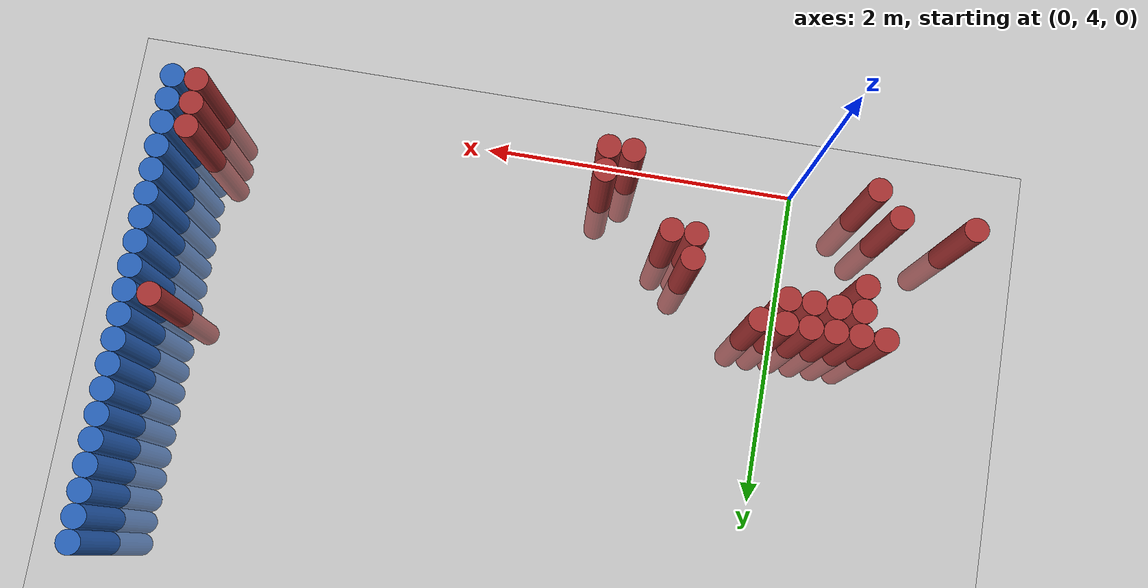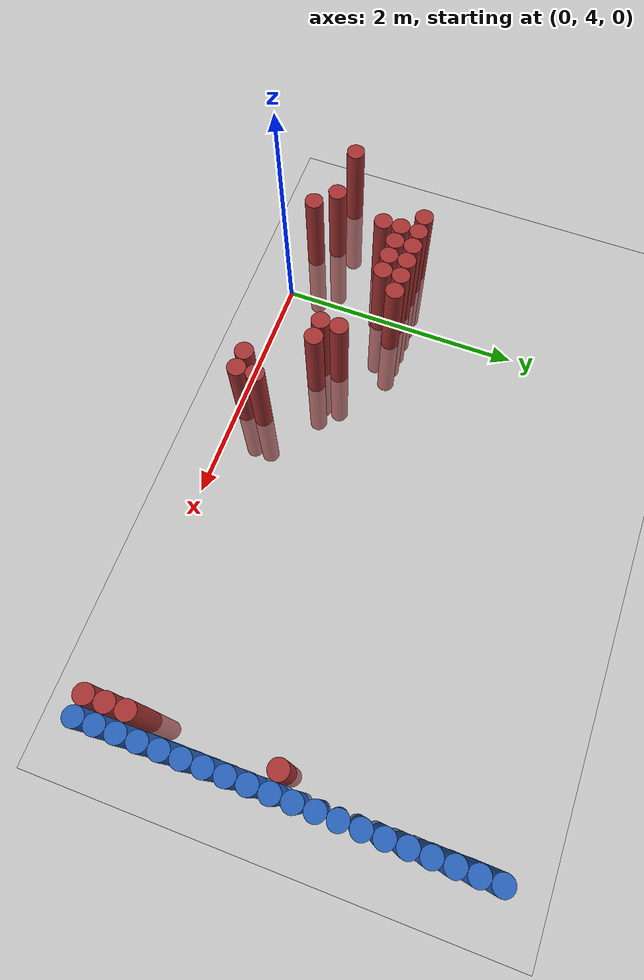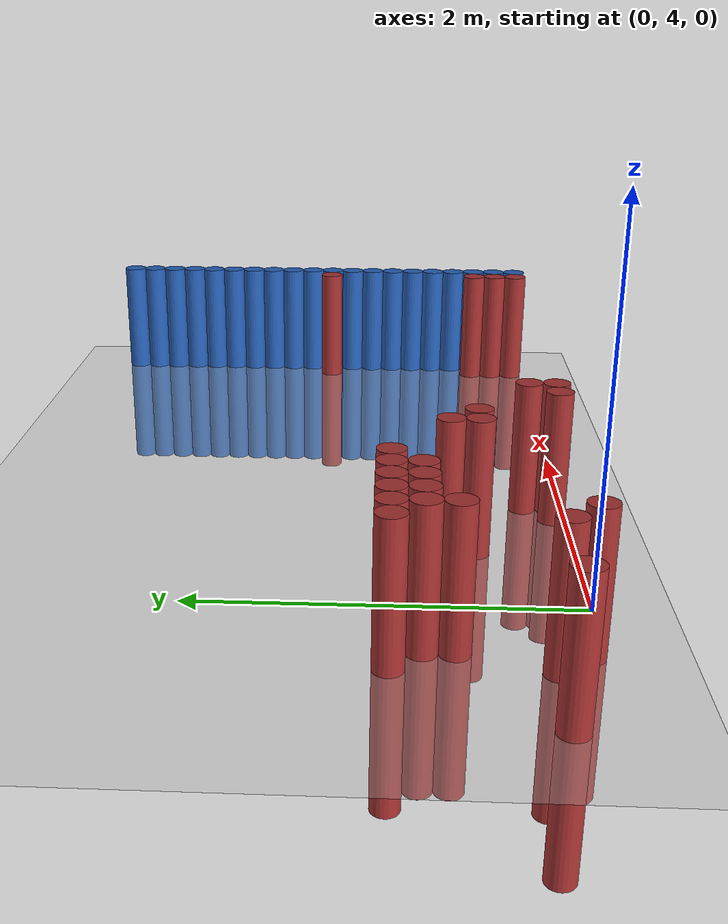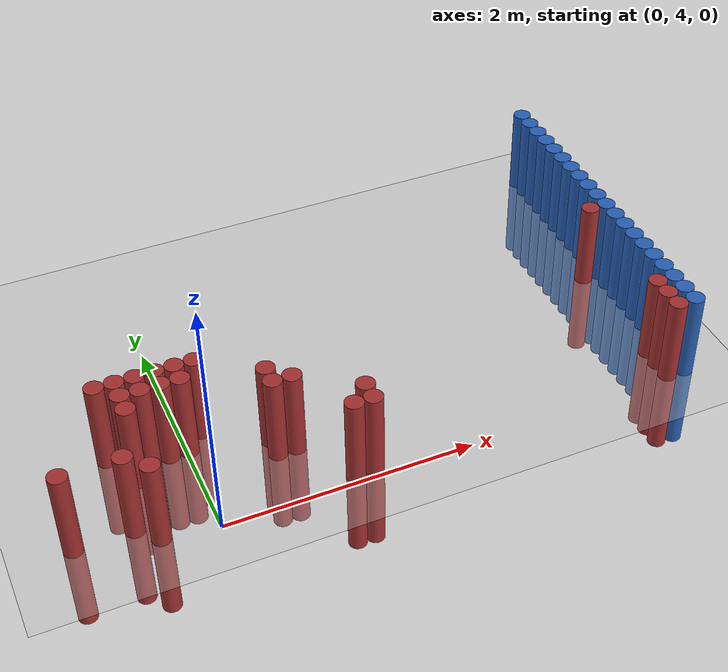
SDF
<sdf version="1.6">
 <world name="default">
  <model name="ground_plane">
   <static>1</static>
   <link name="link">
    <collision name="collision">
     <geometry><plane><normal>0 0 1</normal><size>100 100</size></plane></geometry>
     <surface><friction><ode><mu>100</mu><mu2>50</mu2></ode></friction></surface>
    </collision>
    <visual name="visual">
     <cast_shadows>0</cast_shadows>
     <geometry><plane><normal>0 0 1</normal><size>100 100</size></plane></geometry>
     <material>
      <script><uri>file://media/materials/scripts/gazebo.material</uri><name>Gazebo/Grey</name></script>
     </material>
    </visual>
   </link>
  </model>
  <model name="unit_cylinder_168">
   <static>1</static>
   <pose>3.925000 4.075000 0.000000 0.000000 0.000000 0.000000</pose>
   <link name="link">
    <inertial>
     <mass>1</mass>
     <inertia><ixx>0.145833</ixx><ixy>0</ixy><ixz>0</ixz><iyy>0.145833</iyy><iyz>0</iyz><izz>0.125</izz></inertia>
    </inertial>
    <collision name="collision">
     <geometry><cylinder><radius>0.075000</radius><length>1.5</length></cylinder></geometry>
    </collision>
    <visual name="visual">
     <geometry><cylinder><radius>0.075000</radius><length>1.5</length></cylinder></geometry>
     <material>
      <ambient>0.152000 0.379000 0.720000 1</ambient>
      <diffuse>0.152000 0.379000 0.720000 1</diffuse>
     </material>
     <material>
      <script><name>Gazebo/Grey</name><uri>file://media/materials/scripts/gazebo.material</uri></script>
     </material>
    </visual>
   </link>
  </model>
  <model name="unit_cylinder_170">
   <static>1</static>
   <pose>3.925000 4.225000 0.000000 0.000000 0.000000 0.000000</pose>
   <link name="link">
    <inertial>
     <mass>1</mass>
     <inertia><ixx>0.145833</ixx><ixy>0</ixy><ixz>0</ixz><iyy>0.145833</iyy><iyz>0</iyz><izz>0.125</izz></inertia>
    </inertial>
    <collision name="collision">
     <geometry><cylinder><radius>0.075000</radius><length>1.5</length></cylinder></geometry>
    </collision>
    <visual name="visual">
     <geometry><cylinder><radius>0.075000</radius><length>1.5</length></cylinder></geometry>
     <material>
      <ambient>0.152000 0.379000 0.720000 1</ambient>
      <diffuse>0.152000 0.379000 0.720000 1</diffuse>
     </material>
     <material>
      <script><name>Gazebo/Grey</name><uri>file://media/materials/scripts/gazebo.material</uri></script>
     </material>
    </visual>
   </link>
  </model>
  <model name="unit_cylinder_172">
   <static>1</static>
   <pose>3.925000 4.375000 0.000000 0.000000 0.000000 0.000000</pose>
   <link name="link">
    <inertial>
     <mass>1</mass>
     <inertia><ixx>0.145833</ixx><ixy>0</ixy><ixz>0</ixz><iyy>0.145833</iyy><iyz>0</iyz><izz>0.125</izz></inertia>
    </inertial>
    <collision name="collision">
     <geometry><cylinder><radius>0.075000</radius><length>1.5</length></cylinder></geometry>
    </collision>
    <visual name="visual">
     <geometry><cylinder><radius>0.075000</radius><length>1.5</length></cylinder></geometry>
     <material>
      <ambient>0.152000 0.379000 0.720000 1</ambient>
      <diffuse>0.152000 0.379000 0.720000 1</diffuse>
     </material>
     <material>
      <script><name>Gazebo/Grey</name><uri>file://media/materials/scripts/gazebo.material</uri></script>
     </material>
    </visual>
   </link>
  </model>
  <model name="unit_cylinder_174">
   <static>1</static>
   <pose>3.925000 4.525000 0.000000 0.000000 0.000000 0.000000</pose>
   <link name="link">
    <inertial>
     <mass>1</mass>
     <inertia><ixx>0.145833</ixx><ixy>0</ixy><ixz>0</ixz><iyy>0.145833</iyy><iyz>0</iyz><izz>0.125</izz></inertia>
    </inertial>
    <collision name="collision">
     <geometry><cylinder><radius>0.075000</radius><length>1.5</length></cylinder></geometry>
    </collision>
    <visual name="visual">
     <geometry><cylinder><radius>0.075000</radius><length>1.5</length></cylinder></geometry>
     <material>
      <ambient>0.152000 0.379000 0.720000 1</ambient>
      <diffuse>0.152000 0.379000 0.720000 1</diffuse>
     </material>
     <material>
      <script><name>Gazebo/Grey</name><uri>file://media/materials/scripts/gazebo.material</uri></script>
     </material>
    </visual>
   </link>
  </model>
  <model name="unit_cylinder_176">
   <static>1</static>
   <pose>3.925000 4.675000 0.000000 0.000000 0.000000 0.000000</pose>
   <link name="link">
    <inertial>
     <mass>1</mass>
     <inertia><ixx>0.145833</ixx><ixy>0</ixy><ixz>0</ixz><iyy>0.145833</iyy><iyz>0</iyz><izz>0.125</izz></inertia>
    </inertial>
    <collision name="collision">
     <geometry><cylinder><radius>0.075000</radius><length>1.5</length></cylinder></geometry>
    </collision>
    <visual name="visual">
     <geometry><cylinder><radius>0.075000</radius><length>1.5</length></cylinder></geometry>
     <material>
      <ambient>0.152000 0.379000 0.720000 1</ambient>
      <diffuse>0.152000 0.379000 0.720000 1</diffuse>
     </material>
     <material>
      <script><name>Gazebo/Grey</name><uri>file://media/materials/scripts/gazebo.material</uri></script>
     </material>
    </visual>
   </link>
  </model>
  <model name="unit_cylinder_178">
   <static>1</static>
   <pose>3.925000 4.825000 0.000000 0.000000 0.000000 0.000000</pose>
   <link name="link">
    <inertial>
     <mass>1</mass>
     <inertia><ixx>0.145833</ixx><ixy>0</ixy><ixz>0</ixz><iyy>0.145833</iyy><iyz>0</iyz><izz>0.125</izz></inertia>
    </inertial>
    <collision name="collision">
     <geometry><cylinder><radius>0.075000</radius><length>1.5</length></cylinder></geometry>
    </collision>
    <visual name="visual">
     <geometry><cylinder><radius>0.075000</radius><length>1.5</length></cylinder></geometry>
     <material>
      <ambient>0.152000 0.379000 0.720000 1</ambient>
      <diffuse>0.152000 0.379000 0.720000 1</diffuse>
     </material>
     <material>
      <script><name>Gazebo/Grey</name><uri>file://media/materials/scripts/gazebo.material</uri></script>
     </material>
    </visual>
   </link>
  </model>
  <model name="unit_cylinder_180">
   <static>1</static>
   <pose>3.925000 4.975000 0.000000 0.000000 0.000000 0.000000</pose>
   <link name="link">
    <inertial>
     <mass>1</mass>
     <inertia><ixx>0.145833</ixx><ixy>0</ixy><ixz>0</ixz><iyy>0.145833</iyy><iyz>0</iyz><izz>0.125</izz></inertia>
    </inertial>
    <collision name="collision">
     <geometry><cylinder><radius>0.075000</radius><length>1.5</length></cylinder></geometry>
    </collision>
    <visual name="visual">
     <geometry><cylinder><radius>0.075000</radius><length>1.5</length></cylinder></geometry>
     <material>
      <ambient>0.152000 0.379000 0.720000 1</ambient>
      <diffuse>0.152000 0.379000 0.720000 1</diffuse>
     </material>
     <material>
      <script><name>Gazebo/Grey</name><uri>file://media/materials/scripts/gazebo.material</uri></script>
     </material>
    </visual>
   </link>
  </model>
  <model name="unit_cylinder_182">
   <static>1</static>
   <pose>3.925000 5.125000 0.000000 0.000000 0.000000 0.000000</pose>
   <link name="link">
    <inertial>
     <mass>1</mass>
     <inertia><ixx>0.145833</ixx><ixy>0</ixy><ixz>0</ixz><iyy>0.145833</iyy><iyz>0</iyz><izz>0.125</izz></inertia>
    </inertial>
    <collision name="collision">
     <geometry><cylinder><radius>0.075000</radius><length>1.5</length></cylinder></geometry>
    </collision>
    <visual name="visual">
     <geometry><cylinder><radius>0.075000</radius><length>1.5</length></cylinder></geometry>
     <material>
      <ambient>0.152000 0.379000 0.720000 1</ambient>
      <diffuse>0.152000 0.379000 0.720000 1</diffuse>
     </material>
     <material>
      <script><name>Gazebo/Grey</name><uri>file://media/materials/scripts/gazebo.material</uri></script>
     </material>
    </visual>
   </link>
  </model>
  <model name="unit_cylinder_184">
   <static>1</static>
   <pose>3.925000 5.275000 0.000000 0.000000 0.000000 0.000000</pose>
   <link name="link">
    <inertial>
     <mass>1</mass>
     <inertia><ixx>0.145833</ixx><ixy>0</ixy><ixz>0</ixz><iyy>0.145833</iyy><iyz>0</iyz><izz>0.125</izz></inertia>
    </inertial>
    <collision name="collision">
     <geometry><cylinder><radius>0.075000</radius><length>1.5</length></cylinder></geometry>
    </collision>
    <visual name="visual">
     <geometry><cylinder><radius>0.075000</radius><length>1.5</length></cylinder></geometry>
     <material>
      <ambient>0.152000 0.379000 0.720000 1</ambient>
      <diffuse>0.152000 0.379000 0.720000 1</diffuse>
     </material>
     <material>
      <script><name>Gazebo/Grey</name><uri>file://media/materials/scripts/gazebo.material</uri></script>
     </material>
    </visual>
   </link>
  </model>
  <model name="unit_cylinder_186">
   <static>1</static>
   <pose>3.925000 5.425000 0.000000 0.000000 0.000000 0.000000</pose>
   <link name="link">
    <inertial>
     <mass>1</mass>
     <inertia><ixx>0.145833</ixx><ixy>0</ixy><ixz>0</ixz><iyy>0.145833</iyy><iyz>0</iyz><izz>0.125</izz></inertia>
    </inertial>
    <collision name="collision">
     <geometry><cylinder><radius>0.075000</radius><length>1.5</length></cylinder></geometry>
    </collision>
    <visual name="visual">
     <geometry><cylinder><radius>0.075000</radius><length>1.5</length></cylinder></geometry>
     <material>
      <ambient>0.152000 0.379000 0.720000 1</ambient>
      <diffuse>0.152000 0.379000 0.720000 1</diffuse>
     </material>
     <material>
      <script><name>Gazebo/Grey</name><uri>file://media/materials/scripts/gazebo.material</uri></script>
     </material>
    </visual>
   </link>
  </model>
  <model name="unit_cylinder_188">
   <static>1</static>
   <pose>3.925000 5.575000 0.000000 0.000000 0.000000 0.000000</pose>
   <link name="link">
    <inertial>
     <mass>1</mass>
     <inertia><ixx>0.145833</ixx><ixy>0</ixy><ixz>0</ixz><iyy>0.145833</iyy><iyz>0</iyz><izz>0.125</izz></inertia>
    </inertial>
    <collision name="collision">
     <geometry><cylinder><radius>0.075000</radius><length>1.5</length></cylinder></geometry>
    </collision>
    <visual name="visual">
     <geometry><cylinder><radius>0.075000</radius><length>1.5</length></cylinder></geometry>
     <material>
      <ambient>0.152000 0.379000 0.720000 1</ambient>
      <diffuse>0.152000 0.379000 0.720000 1</diffuse>
     </material>
     <material>
      <script><name>Gazebo/Grey</name><uri>file://media/materials/scripts/gazebo.material</uri></script>
     </material>
    </visual>
   </link>
  </model>
  <model name="unit_cylinder_190">
   <static>1</static>
   <pose>3.925000 5.725000 0.000000 0.000000 0.000000 0.000000</pose>
   <link name="link">
    <inertial>
     <mass>1</mass>
     <inertia><ixx>0.145833</ixx><ixy>0</ixy><ixz>0</ixz><iyy>0.145833</iyy><iyz>0</iyz><izz>0.125</izz></inertia>
    </inertial>
    <collision name="collision">
     <geometry><cylinder><radius>0.075000</radius><length>1.5</length></cylinder></geometry>
    </collision>
    <visual name="visual">
     <geometry><cylinder><radius>0.075000</radius><length>1.5</length></cylinder></geometry>
     <material>
      <ambient>0.152000 0.379000 0.720000 1</ambient>
      <diffuse>0.152000 0.379000 0.720000 1</diffuse>
     </material>
     <material>
      <script><name>Gazebo/Grey</name><uri>file://media/materials/scripts/gazebo.material</uri></script>
     </material>
    </visual>
   </link>
  </model>
  <model name="unit_cylinder_192">
   <static>1</static>
   <pose>3.925000 5.875000 0.000000 0.000000 0.000000 0.000000</pose>
   <link name="link">
    <inertial>
     <mass>1</mass>
     <inertia><ixx>0.145833</ixx><ixy>0</ixy><ixz>0</ixz><iyy>0.145833</iyy><iyz>0</iyz><izz>0.125</izz></inertia>
    </inertial>
    <collision name="collision">
     <geometry><cylinder><radius>0.075000</radius><length>1.5</length></cylinder></geometry>
    </collision>
    <visual name="visual">
     <geometry><cylinder><radius>0.075000</radius><length>1.5</length></cylinder></geometry>
     <material>
      <ambient>0.152000 0.379000 0.720000 1</ambient>
      <diffuse>0.152000 0.379000 0.720000 1</diffuse>
     </material>
     <material>
      <script><name>Gazebo/Grey</name><uri>file://media/materials/scripts/gazebo.material</uri></script>
     </material>
    </visual>
   </link>
  </model>
  <model name="unit_cylinder_194">
   <static>1</static>
   <pose>3.925000 6.025000 0.000000 0.000000 0.000000 0.000000</pose>
   <link name="link">
    <inertial>
     <mass>1</mass>
     <inertia><ixx>0.145833</ixx><ixy>0</ixy><ixz>0</ixz><iyy>0.145833</iyy><iyz>0</iyz><izz>0.125</izz></inertia>
    </inertial>
    <collision name="collision">
     <geometry><cylinder><radius>0.075000</radius><length>1.5</length></cylinder></geometry>
    </collision>
    <visual name="visual">
     <geometry><cylinder><radius>0.075000</radius><length>1.5</length></cylinder></geometry>
     <material>
      <ambient>0.152000 0.379000 0.720000 1</ambient>
      <diffuse>0.152000 0.379000 0.720000 1</diffuse>
     </material>
     <material>
      <script><name>Gazebo/Grey</name><uri>file://media/materials/scripts/gazebo.material</uri></script>
     </material>
    </visual>
   </link>
  </model>
  <model name="unit_cylinder_196">
   <static>1</static>
   <pose>3.925000 6.175000 0.000000 0.000000 0.000000 0.000000</pose>
   <link name="link">
    <inertial>
     <mass>1</mass>
     <inertia><ixx>0.145833</ixx><ixy>0</ixy><ixz>0</ixz><iyy>0.145833</iyy><iyz>0</iyz><izz>0.125</izz></inertia>
    </inertial>
    <collision name="collision">
     <geometry><cylinder><radius>0.075000</radius><length>1.5</length></cylinder></geometry>
    </collision>
    <visual name="visual">
     <geometry><cylinder><radius>0.075000</radius><length>1.5</length></cylinder></geometry>
     <material>
      <ambient>0.152000 0.379000 0.720000 1</ambient>
      <diffuse>0.152000 0.379000 0.720000 1</diffuse>
     </material>
     <material>
      <script><name>Gazebo/Grey</name><uri>file://media/materials/scripts/gazebo.material</uri></script>
     </material>
    </visual>
   </link>
  </model>
  <model name="unit_cylinder_198">
   <static>1</static>
   <pose>3.925000 6.325000 0.000000 0.000000 0.000000 0.000000</pose>
   <link name="link">
    <inertial>
     <mass>1</mass>
     <inertia><ixx>0.145833</ixx><ixy>0</ixy><ixz>0</ixz><iyy>0.145833</iyy><iyz>0</iyz><izz>0.125</izz></inertia>
    </inertial>
    <collision name="collision">
     <geometry><cylinder><radius>0.075000</radius><length>1.5</length></cylinder></geometry>
    </collision>
    <visual name="visual">
     <geometry><cylinder><radius>0.075000</radius><length>1.5</length></cylinder></geometry>
     <material>
      <ambient>0.152000 0.379000 0.720000 1</ambient>
      <diffuse>0.152000 0.379000 0.720000 1</diffuse>
     </material>
     <material>
      <script><name>Gazebo/Grey</name><uri>file://media/materials/scripts/gazebo.material</uri></script>
     </material>
    </visual>
   </link>
  </model>
  <model name="unit_cylinder_200">
   <static>1</static>
   <pose>3.925000 6.475000 0.000000 0.000000 0.000000 0.000000</pose>
   <link name="link">
    <inertial>
     <mass>1</mass>
     <inertia><ixx>0.145833</ixx><ixy>0</ixy><ixz>0</ixz><iyy>0.145833</iyy><iyz>0</iyz><izz>0.125</izz></inertia>
    </inertial>
    <collision name="collision">
     <geometry><cylinder><radius>0.075000</radius><length>1.5</length></cylinder></geometry>
    </collision>
    <visual name="visual">
     <geometry><cylinder><radius>0.075000</radius><length>1.5</length></cylinder></geometry>
     <material>
      <ambient>0.152000 0.379000 0.720000 1</ambient>
      <diffuse>0.152000 0.379000 0.720000 1</diffuse>
     </material>
     <material>
      <script><name>Gazebo/Grey</name><uri>file://media/materials/scripts/gazebo.material</uri></script>
     </material>
    </visual>
   </link>
  </model>
  <model name="unit_cylinder_202">
   <static>1</static>
   <pose>3.925000 6.625000 0.000000 0.000000 0.000000 0.000000</pose>
   <link name="link">
    <inertial>
     <mass>1</mass>
     <inertia><ixx>0.145833</ixx><ixy>0</ixy><ixz>0</ixz><iyy>0.145833</iyy><iyz>0</iyz><izz>0.125</izz></inertia>
    </inertial>
    <collision name="collision">
     <geometry><cylinder><radius>0.075000</radius><length>1.5</length></cylinder></geometry>
    </collision>
    <visual name="visual">
     <geometry><cylinder><radius>0.075000</radius><length>1.5</length></cylinder></geometry>
     <material>
      <ambient>0.152000 0.379000 0.720000 1</ambient>
      <diffuse>0.152000 0.379000 0.720000 1</diffuse>
     </material>
     <material>
      <script><name>Gazebo/Grey</name><uri>file://media/materials/scripts/gazebo.material</uri></script>
     </material>
    </visual>
   </link>
  </model>
  <model name="unit_cylinder_204">
   <static>1</static>
   <pose>3.925000 6.775000 0.000000 0.000000 0.000000 0.000000</pose>
   <link name="link">
    <inertial>
     <mass>1</mass>
     <inertia><ixx>0.145833</ixx><ixy>0</ixy><ixz>0</ixz><iyy>0.145833</iyy><iyz>0</iyz><izz>0.125</izz></inertia>
    </inertial>
    <collision name="collision">
     <geometry><cylinder><radius>0.075000</radius><length>1.5</length></cylinder></geometry>
    </collision>
    <visual name="visual">
     <geometry><cylinder><radius>0.075000</radius><length>1.5</length></cylinder></geometry>
     <material>
      <ambient>0.152000 0.379000 0.720000 1</ambient>
      <diffuse>0.152000 0.379000 0.720000 1</diffuse>
     </material>
     <material>
      <script><name>Gazebo/Grey</name><uri>file://media/materials/scripts/gazebo.material</uri></script>
     </material>
    </visual>
   </link>
  </model>
  <model name="unit_cylinder_206">
   <static>1</static>
   <pose>3.925000 6.925000 0.000000 0.000000 0.000000 0.000000</pose>
   <link name="link">
    <inertial>
     <mass>1</mass>
     <inertia><ixx>0.145833</ixx><ixy>0</ixy><ixz>0</ixz><iyy>0.145833</iyy><iyz>0</iyz><izz>0.125</izz></inertia>
    </inertial>
    <collision name="collision">
     <geometry><cylinder><radius>0.075000</radius><length>1.5</length></cylinder></geometry>
    </collision>
    <visual name="visual">
     <geometry><cylinder><radius>0.075000</radius><length>1.5</length></cylinder></geometry>
     <material>
      <ambient>0.152000 0.379000 0.720000 1</ambient>
      <diffuse>0.152000 0.379000 0.720000 1</diffuse>
     </material>
     <material>
      <script><name>Gazebo/Grey</name><uri>file://media/materials/scripts/gazebo.material</uri></script>
     </material>
    </visual>
   </link>
  </model>
  <model name="unit_cylinder_303">
   <static>1</static>
   <pose>-1.025000 4.225000 0.000000 0.000000 0.000000 0.000000</pose>
   <link name="link">
    <inertial>
     <mass>1</mass>
     <inertia><ixx>0.145833</ixx><ixy>0</ixy><ixz>0</ixz><iyy>0.145833</iyy><iyz>0</iyz><izz>0.125</izz></inertia>
    </inertial>
    <collision name="collision">
     <geometry><cylinder><radius>0.075000</radius><length>1.5</length></cylinder></geometry>
    </collision>
    <visual name="visual">
     <geometry><cylinder><radius>0.075000</radius><length>1.5</length></cylinder></geometry>
     <material>
      <ambient>0.648000 0.192000 0.192000 1</ambient>
      <diffuse>0.648000 0.192000 0.192000 1</diffuse>
     </material>
     <material>
      <script><name>Gazebo/Grey</name><uri>file://media/materials/scripts/gazebo.material</uri></script>
     </material>
    </visual>
   </link>
  </model>
  <model name="unit_cylinder_307">
   <static>1</static>
   <pose>-0.575000 4.225000 0.000000 0.000000 0.000000 0.000000</pose>
   <link name="link">
    <inertial>
     <mass>1</mass>
     <inertia><ixx>0.145833</ixx><ixy>0</ixy><ixz>0</ixz><iyy>0.145833</iyy><iyz>0</iyz><izz>0.125</izz></inertia>
    </inertial>
    <collision name="collision">
     <geometry><cylinder><radius>0.075000</radius><length>1.5</length></cylinder></geometry>
    </collision>
    <visual name="visual">
     <geometry><cylinder><radius>0.075000</radius><length>1.5</length></cylinder></geometry>
     <material>
      <ambient>0.648000 0.192000 0.192000 1</ambient>
      <diffuse>0.648000 0.192000 0.192000 1</diffuse>
     </material>
     <material>
      <script><name>Gazebo/Grey</name><uri>file://media/materials/scripts/gazebo.material</uri></script>
     </material>
    </visual>
   </link>
  </model>
  <model name="unit_cylinder_308">
   <static>1</static>
   <pose>-0.575000 4.975000 0.000000 0.000000 0.000000 0.000000</pose>
   <link name="link">
    <inertial>
     <mass>1</mass>
     <inertia><ixx>0.145833</ixx><ixy>0</ixy><ixz>0</ixz><iyy>0.145833</iyy><iyz>0</iyz><izz>0.125</izz></inertia>
    </inertial>
    <collision name="collision">
     <geometry><cylinder><radius>0.075000</radius><length>1.5</length></cylinder></geometry>
    </collision>
    <visual name="visual">
     <geometry><cylinder><radius>0.075000</radius><length>1.5</length></cylinder></geometry>
     <material>
      <ambient>0.648000 0.192000 0.192000 1</ambient>
      <diffuse>0.648000 0.192000 0.192000 1</diffuse>
     </material>
     <material>
      <script><name>Gazebo/Grey</name><uri>file://media/materials/scripts/gazebo.material</uri></script>
     </material>
    </visual>
   </link>
  </model>
  <model name="unit_cylinder_311">
   <static>1</static>
   <pose>-0.425000 4.075000 0.000000 0.000000 0.000000 0.000000</pose>
   <link name="link">
    <inertial>
     <mass>1</mass>
     <inertia><ixx>0.145833</ixx><ixy>0</ixy><ixz>0</ixz><iyy>0.145833</iyy><iyz>0</iyz><izz>0.125</izz></inertia>
    </inertial>
    <collision name="collision">
     <geometry><cylinder><radius>0.075000</radius><length>1.5</length></cylinder></geometry>
    </collision>
    <visual name="visual">
     <geometry><cylinder><radius>0.075000</radius><length>1.5</length></cylinder></geometry>
     <material>
      <ambient>0.648000 0.192000 0.192000 1</ambient>
      <diffuse>0.648000 0.192000 0.192000 1</diffuse>
     </material>
     <material>
      <script><name>Gazebo/Grey</name><uri>file://media/materials/scripts/gazebo.material</uri></script>
     </material>
    </visual>
   </link>
  </model>
  <model name="unit_cylinder_312">
   <static>1</static>
   <pose>-0.425000 4.675000 0.000000 0.000000 0.000000 0.000000</pose>
   <link name="link">
    <inertial>
     <mass>1</mass>
     <inertia><ixx>0.145833</ixx><ixy>0</ixy><ixz>0</ixz><iyy>0.145833</iyy><iyz>0</iyz><izz>0.125</izz></inertia>
    </inertial>
    <collision name="collision">
     <geometry><cylinder><radius>0.075000</radius><length>1.5</length></cylinder></geometry>
    </collision>
    <visual name="visual">
     <geometry><cylinder><radius>0.075000</radius><length>1.5</length></cylinder></geometry>
     <material>
      <ambient>0.648000 0.192000 0.192000 1</ambient>
      <diffuse>0.648000 0.192000 0.192000 1</diffuse>
     </material>
     <material>
      <script><name>Gazebo/Grey</name><uri>file://media/materials/scripts/gazebo.material</uri></script>
     </material>
    </visual>
   </link>
  </model>
  <model name="unit_cylinder_313">
   <static>1</static>
   <pose>-0.425000 4.825000 0.000000 0.000000 0.000000 0.000000</pose>
   <link name="link">
    <inertial>
     <mass>1</mass>
     <inertia><ixx>0.145833</ixx><ixy>0</ixy><ixz>0</ixz><iyy>0.145833</iyy><iyz>0</iyz><izz>0.125</izz></inertia>
    </inertial>
    <collision name="collision">
     <geometry><cylinder><radius>0.075000</radius><length>1.5</length></cylinder></geometry>
    </collision>
    <visual name="visual">
     <geometry><cylinder><radius>0.075000</radius><length>1.5</length></cylinder></geometry>
     <material>
      <ambient>0.648000 0.192000 0.192000 1</ambient>
      <diffuse>0.648000 0.192000 0.192000 1</diffuse>
     </material>
     <material>
      <script><name>Gazebo/Grey</name><uri>file://media/materials/scripts/gazebo.material</uri></script>
     </material>
    </visual>
   </link>
  </model>
  <model name="unit_cylinder_314">
   <static>1</static>
   <pose>-0.425000 4.975000 0.000000 0.000000 0.000000 0.000000</pose>
   <link name="link">
    <inertial>
     <mass>1</mass>
     <inertia><ixx>0.145833</ixx><ixy>0</ixy><ixz>0</ixz><iyy>0.145833</iyy><iyz>0</iyz><izz>0.125</izz></inertia>
    </inertial>
    <collision name="collision">
     <geometry><cylinder><radius>0.075000</radius><length>1.5</length></cylinder></geometry>
    </collision>
    <visual name="visual">
     <geometry><cylinder><radius>0.075000</radius><length>1.5</length></cylinder></geometry>
     <material>
      <ambient>0.648000 0.192000 0.192000 1</ambient>
      <diffuse>0.648000 0.192000 0.192000 1</diffuse>
     </material>
     <material>
      <script><name>Gazebo/Grey</name><uri>file://media/materials/scripts/gazebo.material</uri></script>
     </material>
    </visual>
   </link>
  </model>
  <model name="unit_cylinder_316">
   <static>1</static>
   <pose>-0.275000 4.825000 0.000000 0.000000 0.000000 0.000000</pose>
   <link name="link">
    <inertial>
     <mass>1</mass>
     <inertia><ixx>0.145833</ixx><ixy>0</ixy><ixz>0</ixz><iyy>0.145833</iyy><iyz>0</iyz><izz>0.125</izz></inertia>
    </inertial>
    <collision name="collision">
     <geometry><cylinder><radius>0.075000</radius><length>1.5</length></cylinder></geometry>
    </collision>
    <visual name="visual">
     <geometry><cylinder><radius>0.075000</radius><length>1.5</length></cylinder></geometry>
     <material>
      <ambient>0.648000 0.192000 0.192000 1</ambient>
      <diffuse>0.648000 0.192000 0.192000 1</diffuse>
     </material>
     <material>
      <script><name>Gazebo/Grey</name><uri>file://media/materials/scripts/gazebo.material</uri></script>
     </material>
    </visual>
   </link>
  </model>
  <model name="unit_cylinder_317">
   <static>1</static>
   <pose>-0.275000 4.975000 0.000000 0.000000 0.000000 0.000000</pose>
   <link name="link">
    <inertial>
     <mass>1</mass>
     <inertia><ixx>0.145833</ixx><ixy>0</ixy><ixz>0</ixz><iyy>0.145833</iyy><iyz>0</iyz><izz>0.125</izz></inertia>
    </inertial>
    <collision name="collision">
     <geometry><cylinder><radius>0.075000</radius><length>1.5</length></cylinder></geometry>
    </collision>
    <visual name="visual">
     <geometry><cylinder><radius>0.075000</radius><length>1.5</length></cylinder></geometry>
     <material>
      <ambient>0.648000 0.192000 0.192000 1</ambient>
      <diffuse>0.648000 0.192000 0.192000 1</diffuse>
     </material>
     <material>
      <script><name>Gazebo/Grey</name><uri>file://media/materials/scripts/gazebo.material</uri></script>
     </material>
    </visual>
   </link>
  </model>
  <model name="unit_cylinder_318">
   <static>1</static>
   <pose>-0.125000 4.825000 0.000000 0.000000 0.000000 0.000000</pose>
   <link name="link">
    <inertial>
     <mass>1</mass>
     <inertia><ixx>0.145833</ixx><ixy>0</ixy><ixz>0</ixz><iyy>0.145833</iyy><iyz>0</iyz><izz>0.125</izz></inertia>
    </inertial>
    <collision name="collision">
     <geometry><cylinder><radius>0.075000</radius><length>1.5</length></cylinder></geometry>
    </collision>
    <visual name="visual">
     <geometry><cylinder><radius>0.075000</radius><length>1.5</length></cylinder></geometry>
     <material>
      <ambient>0.648000 0.192000 0.192000 1</ambient>
      <diffuse>0.648000 0.192000 0.192000 1</diffuse>
     </material>
     <material>
      <script><name>Gazebo/Grey</name><uri>file://media/materials/scripts/gazebo.material</uri></script>
     </material>
    </visual>
   </link>
  </model>
  <model name="unit_cylinder_319">
   <static>1</static>
   <pose>-0.125000 4.975000 0.000000 0.000000 0.000000 0.000000</pose>
   <link name="link">
    <inertial>
     <mass>1</mass>
     <inertia><ixx>0.145833</ixx><ixy>0</ixy><ixz>0</ixz><iyy>0.145833</iyy><iyz>0</iyz><izz>0.125</izz></inertia>
    </inertial>
    <collision name="collision">
     <geometry><cylinder><radius>0.075000</radius><length>1.5</length></cylinder></geometry>
    </collision>
    <visual name="visual">
     <geometry><cylinder><radius>0.075000</radius><length>1.5</length></cylinder></geometry>
     <material>
      <ambient>0.648000 0.192000 0.192000 1</ambient>
      <diffuse>0.648000 0.192000 0.192000 1</diffuse>
     </material>
     <material>
      <script><name>Gazebo/Grey</name><uri>file://media/materials/scripts/gazebo.material</uri></script>
     </material>
    </visual>
   </link>
  </model>
  <model name="unit_cylinder_321">
   <static>1</static>
   <pose>0.025000 4.825000 0.000000 0.000000 0.000000 0.000000</pose>
   <link name="link">
    <inertial>
     <mass>1</mass>
     <inertia><ixx>0.145833</ixx><ixy>0</ixy><ixz>0</ixz><iyy>0.145833</iyy><iyz>0</iyz><izz>0.125</izz></inertia>
    </inertial>
    <collision name="collision">
     <geometry><cylinder><radius>0.075000</radius><length>1.5</length></cylinder></geometry>
    </collision>
    <visual name="visual">
     <geometry><cylinder><radius>0.075000</radius><length>1.5</length></cylinder></geometry>
     <material>
      <ambient>0.648000 0.192000 0.192000 1</ambient>
      <diffuse>0.648000 0.192000 0.192000 1</diffuse>
     </material>
     <material>
      <script><name>Gazebo/Grey</name><uri>file://media/materials/scripts/gazebo.material</uri></script>
     </material>
    </visual>
   </link>
  </model>
  <model name="unit_cylinder_322">
   <static>1</static>
   <pose>0.025000 4.975000 0.000000 0.000000 0.000000 0.000000</pose>
   <link name="link">
    <inertial>
     <mass>1</mass>
     <inertia><ixx>0.145833</ixx><ixy>0</ixy><ixz>0</ixz><iyy>0.145833</iyy><iyz>0</iyz><izz>0.125</izz></inertia>
    </inertial>
    <collision name="collision">
     <geometry><cylinder><radius>0.075000</radius><length>1.5</length></cylinder></geometry>
    </collision>
    <visual name="visual">
     <geometry><cylinder><radius>0.075000</radius><length>1.5</length></cylinder></geometry>
     <material>
      <ambient>0.648000 0.192000 0.192000 1</ambient>
      <diffuse>0.648000 0.192000 0.192000 1</diffuse>
     </material>
     <material>
      <script><name>Gazebo/Grey</name><uri>file://media/materials/scripts/gazebo.material</uri></script>
     </material>
    </visual>
   </link>
  </model>
  <model name="unit_cylinder_325">
   <static>1</static>
   <pose>0.175000 4.975000 0.000000 0.000000 0.000000 0.000000</pose>
   <link name="link">
    <inertial>
     <mass>1</mass>
     <inertia><ixx>0.145833</ixx><ixy>0</ixy><ixz>0</ixz><iyy>0.145833</iyy><iyz>0</iyz><izz>0.125</izz></inertia>
    </inertial>
    <collision name="collision">
     <geometry><cylinder><radius>0.075000</radius><length>1.5</length></cylinder></geometry>
    </collision>
    <visual name="visual">
     <geometry><cylinder><radius>0.075000</radius><length>1.5</length></cylinder></geometry>
     <material>
      <ambient>0.648000 0.192000 0.192000 1</ambient>
      <diffuse>0.648000 0.192000 0.192000 1</diffuse>
     </material>
     <material>
      <script><name>Gazebo/Grey</name><uri>file://media/materials/scripts/gazebo.material</uri></script>
     </material>
    </visual>
   </link>
  </model>
  <model name="unit_cylinder_331">
   <static>1</static>
   <pose>0.625000 4.525000 0.000000 0.000000 0.000000 0.000000</pose>
   <link name="link">
    <inertial>
     <mass>1</mass>
     <inertia><ixx>0.145833</ixx><ixy>0</ixy><ixz>0</ixz><iyy>0.145833</iyy><iyz>0</iyz><izz>0.125</izz></inertia>
    </inertial>
    <collision name="collision">
     <geometry><cylinder><radius>0.075000</radius><length>1.5</length></cylinder></geometry>
    </collision>
    <visual name="visual">
     <geometry><cylinder><radius>0.075000</radius><length>1.5</length></cylinder></geometry>
     <material>
      <ambient>0.648000 0.192000 0.192000 1</ambient>
      <diffuse>0.648000 0.192000 0.192000 1</diffuse>
     </material>
     <material>
      <script><name>Gazebo/Grey</name><uri>file://media/materials/scripts/gazebo.material</uri></script>
     </material>
    </visual>
   </link>
  </model>
  <model name="unit_cylinder_332">
   <static>1</static>
   <pose>0.625000 4.675000 0.000000 0.000000 0.000000 0.000000</pose>
   <link name="link">
    <inertial>
     <mass>1</mass>
     <inertia><ixx>0.145833</ixx><ixy>0</ixy><ixz>0</ixz><iyy>0.145833</iyy><iyz>0</iyz><izz>0.125</izz></inertia>
    </inertial>
    <collision name="collision">
     <geometry><cylinder><radius>0.075000</radius><length>1.5</length></cylinder></geometry>
    </collision>
    <visual name="visual">
     <geometry><cylinder><radius>0.075000</radius><length>1.5</length></cylinder></geometry>
     <material>
      <ambient>0.648000 0.192000 0.192000 1</ambient>
      <diffuse>0.648000 0.192000 0.192000 1</diffuse>
     </material>
     <material>
      <script><name>Gazebo/Grey</name><uri>file://media/materials/scripts/gazebo.material</uri></script>
     </material>
    </visual>
   </link>
  </model>
  <model name="unit_cylinder_333">
   <static>1</static>
   <pose>0.775000 4.525000 0.000000 0.000000 0.000000 0.000000</pose>
   <link name="link">
    <inertial>
     <mass>1</mass>
     <inertia><ixx>0.145833</ixx><ixy>0</ixy><ixz>0</ixz><iyy>0.145833</iyy><iyz>0</iyz><izz>0.125</izz></inertia>
    </inertial>
    <collision name="collision">
     <geometry><cylinder><radius>0.075000</radius><length>1.5</length></cylinder></geometry>
    </collision>
    <visual name="visual">
     <geometry><cylinder><radius>0.075000</radius><length>1.5</length></cylinder></geometry>
     <material>
      <ambient>0.648000 0.192000 0.192000 1</ambient>
      <diffuse>0.648000 0.192000 0.192000 1</diffuse>
     </material>
     <material>
      <script><name>Gazebo/Grey</name><uri>file://media/materials/scripts/gazebo.material</uri></script>
     </material>
    </visual>
   </link>
  </model>
  <model name="unit_cylinder_334">
   <static>1</static>
   <pose>1.075000 4.075000 0.000000 0.000000 0.000000 0.000000</pose>
   <link name="link">
    <inertial>
     <mass>1</mass>
     <inertia><ixx>0.145833</ixx><ixy>0</ixy><ixz>0</ixz><iyy>0.145833</iyy><iyz>0</iyz><izz>0.125</izz></inertia>
    </inertial>
    <collision name="collision">
     <geometry><cylinder><radius>0.075000</radius><length>1.5</length></cylinder></geometry>
    </collision>
    <visual name="visual">
     <geometry><cylinder><radius>0.075000</radius><length>1.5</length></cylinder></geometry>
     <material>
      <ambient>0.648000 0.192000 0.192000 1</ambient>
      <diffuse>0.648000 0.192000 0.192000 1</diffuse>
     </material>
     <material>
      <script><name>Gazebo/Grey</name><uri>file://media/materials/scripts/gazebo.material</uri></script>
     </material>
    </visual>
   </link>
  </model>
  <model name="unit_cylinder_335">
   <static>1</static>
   <pose>1.225000 4.075000 0.000000 0.000000 0.000000 0.000000</pose>
   <link name="link">
    <inertial>
     <mass>1</mass>
     <inertia><ixx>0.145833</ixx><ixy>0</ixy><ixz>0</ixz><iyy>0.145833</iyy><iyz>0</iyz><izz>0.125</izz></inertia>
    </inertial>
    <collision name="collision">
     <geometry><cylinder><radius>0.075000</radius><length>1.5</length></cylinder></geometry>
    </collision>
    <visual name="visual">
     <geometry><cylinder><radius>0.075000</radius><length>1.5</length></cylinder></geometry>
     <material>
      <ambient>0.648000 0.192000 0.192000 1</ambient>
      <diffuse>0.648000 0.192000 0.192000 1</diffuse>
     </material>
     <material>
      <script><name>Gazebo/Grey</name><uri>file://media/materials/scripts/gazebo.material</uri></script>
     </material>
    </visual>
   </link>
  </model>
  <model name="unit_cylinder_336">
   <static>1</static>
   <pose>1.225000 4.225000 0.000000 0.000000 0.000000 0.000000</pose>
   <link name="link">
    <inertial>
     <mass>1</mass>
     <inertia><ixx>0.145833</ixx><ixy>0</ixy><ixz>0</ixz><iyy>0.145833</iyy><iyz>0</iyz><izz>0.125</izz></inertia>
    </inertial>
    <collision name="collision">
     <geometry><cylinder><radius>0.075000</radius><length>1.5</length></cylinder></geometry>
    </collision>
    <visual name="visual">
     <geometry><cylinder><radius>0.075000</radius><length>1.5</length></cylinder></geometry>
     <material>
      <ambient>0.648000 0.192000 0.192000 1</ambient>
      <diffuse>0.648000 0.192000 0.192000 1</diffuse>
     </material>
     <material>
      <script><name>Gazebo/Grey</name><uri>file://media/materials/scripts/gazebo.material</uri></script>
     </material>
    </visual>
   </link>
  </model>
  <model name="unit_cylinder_376">
   <static>1</static>
   <pose>3.775000 4.075000 0.000000 0.000000 0.000000 0.000000</pose>
   <link name="link">
    <inertial>
     <mass>1</mass>
     <inertia><ixx>0.145833</ixx><ixy>0</ixy><ixz>0</ixz><iyy>0.145833</iyy><iyz>0</iyz><izz>0.125</izz></inertia>
    </inertial>
    <collision name="collision">
     <geometry><cylinder><radius>0.075000</radius><length>1.5</length></cylinder></geometry>
    </collision>
    <visual name="visual">
     <geometry><cylinder><radius>0.075000</radius><length>1.5</length></cylinder></geometry>
     <material>
      <ambient>0.648000 0.192000 0.192000 1</ambient>
      <diffuse>0.648000 0.192000 0.192000 1</diffuse>
     </material>
     <material>
      <script><name>Gazebo/Grey</name><uri>file://media/materials/scripts/gazebo.material</uri></script>
     </material>
    </visual>
   </link>
  </model>
  <model name="unit_cylinder_377">
   <static>1</static>
   <pose>3.775000 4.225000 0.000000 0.000000 0.000000 0.000000</pose>
   <link name="link">
    <inertial>
     <mass>1</mass>
     <inertia><ixx>0.145833</ixx><ixy>0</ixy><ixz>0</ixz><iyy>0.145833</iyy><iyz>0</iyz><izz>0.125</izz></inertia>
    </inertial>
    <collision name="collision">
     <geometry><cylinder><radius>0.075000</radius><length>1.5</length></cylinder></geometry>
    </collision>
    <visual name="visual">
     <geometry><cylinder><radius>0.075000</radius><length>1.5</length></cylinder></geometry>
     <material>
      <ambient>0.648000 0.192000 0.192000 1</ambient>
      <diffuse>0.648000 0.192000 0.192000 1</diffuse>
     </material>
     <material>
      <script><name>Gazebo/Grey</name><uri>file://media/materials/scripts/gazebo.material</uri></script>
     </material>
    </visual>
   </link>
  </model>
  <model name="unit_cylinder_378">
   <static>1</static>
   <pose>3.775000 4.375000 0.000000 0.000000 0.000000 0.000000</pose>
   <link name="link">
    <inertial>
     <mass>1</mass>
     <inertia><ixx>0.145833</ixx><ixy>0</ixy><ixz>0</ixz><iyy>0.145833</iyy><iyz>0</iyz><izz>0.125</izz></inertia>
    </inertial>
    <collision name="collision">
     <geometry><cylinder><radius>0.075000</radius><length>1.5</length></cylinder></geometry>
    </collision>
    <visual name="visual">
     <geometry><cylinder><radius>0.075000</radius><length>1.5</length></cylinder></geometry>
     <material>
      <ambient>0.648000 0.192000 0.192000 1</ambient>
      <diffuse>0.648000 0.192000 0.192000 1</diffuse>
     </material>
     <material>
      <script><name>Gazebo/Grey</name><uri>file://media/materials/scripts/gazebo.material</uri></script>
     </material>
    </visual>
   </link>
  </model>
  <model name="unit_cylinder_379">
   <static>1</static>
   <pose>3.775000 5.425000 0.000000 0.000000 0.000000 0.000000</pose>
   <link name="link">
    <inertial>
     <mass>1</mass>
     <inertia><ixx>0.145833</ixx><ixy>0</ixy><ixz>0</ixz><iyy>0.145833</iyy><iyz>0</iyz><izz>0.125</izz></inertia>
    </inertial>
    <collision name="collision">
     <geometry><cylinder><radius>0.075000</radius><length>1.5</length></cylinder></geometry>
    </collision>
    <visual name="visual">
     <geometry><cylinder><radius>0.075000</radius><length>1.5</length></cylinder></geometry>
     <material>
      <ambient>0.648000 0.192000 0.192000 1</ambient>
      <diffuse>0.648000 0.192000 0.192000 1</diffuse>
     </material>
     <material>
      <script><name>Gazebo/Grey</name><uri>file://media/materials/scripts/gazebo.material</uri></script>
     </material>
    </visual>
   </link>
  </model>
  <model name="unit_cylinder_420">
   <static>1</static>
   <pose>3.925000 4.075000 0.000000 0.000000 0.000000 0.000000</pose>
   <link name="link">
    <inertial>
     <mass>1</mass>
     <inertia><ixx>0.145833</ixx><ixy>0</ixy><ixz>0</ixz><iyy>0.145833</iyy><iyz>0</iyz><izz>0.125</izz></inertia>
    </inertial>
    <collision name="collision">
     <geometry><cylinder><radius>0.075000</radius><length>1.5</length></cylinder></geometry>
    </collision>
    <visual name="visual">
     <geometry><cylinder><radius>0.075000</radius><length>1.5</length></cylinder></geometry>
     <material>
      <ambient>0.152000 0.379000 0.720000 1</ambient>
      <diffuse>0.152000 0.379000 0.720000 1</diffuse>
     </material>
     <material>
      <script><name>Gazebo/Grey</name><uri>file://media/materials/scripts/gazebo.material</uri></script>
     </material>
    </visual>
   </link>
  </model>
  <model name="unit_cylinder_421">
   <static>1</static>
   <pose>3.925000 4.225000 0.000000 0.000000 0.000000 0.000000</pose>
   <link name="link">
    <inertial>
     <mass>1</mass>
     <inertia><ixx>0.145833</ixx><ixy>0</ixy><ixz>0</ixz><iyy>0.145833</iyy><iyz>0</iyz><izz>0.125</izz></inertia>
    </inertial>
    <collision name="collision">
     <geometry><cylinder><radius>0.075000</radius><length>1.5</length></cylinder></geometry>
    </collision>
    <visual name="visual">
     <geometry><cylinder><radius>0.075000</radius><length>1.5</length></cylinder></geometry>
     <material>
      <ambient>0.152000 0.379000 0.720000 1</ambient>
      <diffuse>0.152000 0.379000 0.720000 1</diffuse>
     </material>
     <material>
      <script><name>Gazebo/Grey</name><uri>file://media/materials/scripts/gazebo.material</uri></script>
     </material>
    </visual>
   </link>
  </model>
  <model name="unit_cylinder_422">
   <static>1</static>
   <pose>3.925000 4.375000 0.000000 0.000000 0.000000 0.000000</pose>
   <link name="link">
    <inertial>
     <mass>1</mass>
     <inertia><ixx>0.145833</ixx><ixy>0</ixy><ixz>0</ixz><iyy>0.145833</iyy><iyz>0</iyz><izz>0.125</izz></inertia>
    </inertial>
    <collision name="collision">
     <geometry><cylinder><radius>0.075000</radius><length>1.5</length></cylinder></geometry>
    </collision>
    <visual name="visual">
     <geometry><cylinder><radius>0.075000</radius><length>1.5</length></cylinder></geometry>
     <material>
      <ambient>0.152000 0.379000 0.720000 1</ambient>
      <diffuse>0.152000 0.379000 0.720000 1</diffuse>
     </material>
     <material>
      <script><name>Gazebo/Grey</name><uri>file://media/materials/scripts/gazebo.material</uri></script>
     </material>
    </visual>
   </link>
  </model>
  <model name="unit_cylinder_423">
   <static>1</static>
   <pose>3.925000 4.525000 0.000000 0.000000 0.000000 0.000000</pose>
   <link name="link">
    <inertial>
     <mass>1</mass>
     <inertia><ixx>0.145833</ixx><ixy>0</ixy><ixz>0</ixz><iyy>0.145833</iyy><iyz>0</iyz><izz>0.125</izz></inertia>
    </inertial>
    <collision name="collision">
     <geometry><cylinder><radius>0.075000</radius><length>1.5</length></cylinder></geometry>
    </collision>
    <visual name="visual">
     <geometry><cylinder><radius>0.075000</radius><length>1.5</length></cylinder></geometry>
     <material>
      <ambient>0.152000 0.379000 0.720000 1</ambient>
      <diffuse>0.152000 0.379000 0.720000 1</diffuse>
     </material>
     <material>
      <script><name>Gazebo/Grey</name><uri>file://media/materials/scripts/gazebo.material</uri></script>
     </material>
    </visual>
   </link>
  </model>
  <model name="unit_cylinder_424">
   <static>1</static>
   <pose>3.925000 4.675000 0.000000 0.000000 0.000000 0.000000</pose>
   <link name="link">
    <inertial>
     <mass>1</mass>
     <inertia><ixx>0.145833</ixx><ixy>0</ixy><ixz>0</ixz><iyy>0.145833</iyy><iyz>0</iyz><izz>0.125</izz></inertia>
    </inertial>
    <collision name="collision">
     <geometry><cylinder><radius>0.075000</radius><length>1.5</length></cylinder></geometry>
    </collision>
    <visual name="visual">
     <geometry><cylinder><radius>0.075000</radius><length>1.5</length></cylinder></geometry>
     <material>
      <ambient>0.152000 0.379000 0.720000 1</ambient>
      <diffuse>0.152000 0.379000 0.720000 1</diffuse>
     </material>
     <material>
      <script><name>Gazebo/Grey</name><uri>file://media/materials/scripts/gazebo.material</uri></script>
     </material>
    </visual>
   </link>
  </model>
  <model name="unit_cylinder_425">
   <static>1</static>
   <pose>3.925000 4.825000 0.000000 0.000000 0.000000 0.000000</pose>
   <link name="link">
    <inertial>
     <mass>1</mass>
     <inertia><ixx>0.145833</ixx><ixy>0</ixy><ixz>0</ixz><iyy>0.145833</iyy><iyz>0</iyz><izz>0.125</izz></inertia>
    </inertial>
    <collision name="collision">
     <geometry><cylinder><radius>0.075000</radius><length>1.5</length></cylinder></geometry>
    </collision>
    <visual name="visual">
     <geometry><cylinder><radius>0.075000</radius><length>1.5</length></cylinder></geometry>
     <material>
      <ambient>0.152000 0.379000 0.720000 1</ambient>
      <diffuse>0.152000 0.379000 0.720000 1</diffuse>
     </material>
     <material>
      <script><name>Gazebo/Grey</name><uri>file://media/materials/scripts/gazebo.material</uri></script>
     </material>
    </visual>
   </link>
  </model>
  <model name="unit_cylinder_426">
   <static>1</static>
   <pose>3.925000 4.975000 0.000000 0.000000 0.000000 0.000000</pose>
   <link name="link">
    <inertial>
     <mass>1</mass>
     <inertia><ixx>0.145833</ixx><ixy>0</ixy><ixz>0</ixz><iyy>0.145833</iyy><iyz>0</iyz><izz>0.125</izz></inertia>
    </inertial>
    <collision name="collision">
     <geometry><cylinder><radius>0.075000</radius><length>1.5</length></cylinder></geometry>
    </collision>
    <visual name="visual">
     <geometry><cylinder><radius>0.075000</radius><length>1.5</length></cylinder></geometry>
     <material>
      <ambient>0.152000 0.379000 0.720000 1</ambient>
      <diffuse>0.152000 0.379000 0.720000 1</diffuse>
     </material>
     <material>
      <script><name>Gazebo/Grey</name><uri>file://media/materials/scripts/gazebo.material</uri></script>
     </material>
    </visual>
   </link>
  </model>
  <model name="unit_cylinder_427">
   <static>1</static>
   <pose>3.925000 5.125000 0.000000 0.000000 0.000000 0.000000</pose>
   <link name="link">
    <inertial>
     <mass>1</mass>
     <inertia><ixx>0.145833</ixx><ixy>0</ixy><ixz>0</ixz><iyy>0.145833</iyy><iyz>0</iyz><izz>0.125</izz></inertia>
    </inertial>
    <collision name="collision">
     <geometry><cylinder><radius>0.075000</radius><length>1.5</length></cylinder></geometry>
    </collision>
    <visual name="visual">
     <geometry><cylinder><radius>0.075000</radius><length>1.5</length></cylinder></geometry>
     <material>
      <ambient>0.152000 0.379000 0.720000 1</ambient>
      <diffuse>0.152000 0.379000 0.720000 1</diffuse>
     </material>
     <material>
      <script><name>Gazebo/Grey</name><uri>file://media/materials/scripts/gazebo.material</uri></script>
     </material>
    </visual>
   </link>
  </model>
  <model name="unit_cylinder_428">
   <static>1</static>
   <pose>3.925000 5.275000 0.000000 0.000000 0.000000 0.000000</pose>
   <link name="link">
    <inertial>
     <mass>1</mass>
     <inertia><ixx>0.145833</ixx><ixy>0</ixy><ixz>0</ixz><iyy>0.145833</iyy><iyz>0</iyz><izz>0.125</izz></inertia>
    </inertial>
    <collision name="collision">
     <geometry><cylinder><radius>0.075000</radius><length>1.5</length></cylinder></geometry>
    </collision>
    <visual name="visual">
     <geometry><cylinder><radius>0.075000</radius><length>1.5</length></cylinder></geometry>
     <material>
      <ambient>0.152000 0.379000 0.720000 1</ambient>
      <diffuse>0.152000 0.379000 0.720000 1</diffuse>
     </material>
     <material>
      <script><name>Gazebo/Grey</name><uri>file://media/materials/scripts/gazebo.material</uri></script>
     </material>
    </visual>
   </link>
  </model>
  <model name="unit_cylinder_429">
   <static>1</static>
   <pose>3.925000 5.425000 0.000000 0.000000 0.000000 0.000000</pose>
   <link name="link">
    <inertial>
     <mass>1</mass>
     <inertia><ixx>0.145833</ixx><ixy>0</ixy><ixz>0</ixz><iyy>0.145833</iyy><iyz>0</iyz><izz>0.125</izz></inertia>
    </inertial>
    <collision name="collision">
     <geometry><cylinder><radius>0.075000</radius><length>1.5</length></cylinder></geometry>
    </collision>
    <visual name="visual">
     <geometry><cylinder><radius>0.075000</radius><length>1.5</length></cylinder></geometry>
     <material>
      <ambient>0.152000 0.379000 0.720000 1</ambient>
      <diffuse>0.152000 0.379000 0.720000 1</diffuse>
     </material>
     <material>
      <script><name>Gazebo/Grey</name><uri>file://media/materials/scripts/gazebo.material</uri></script>
     </material>
    </visual>
   </link>
  </model>
 </world>
</sdf>
